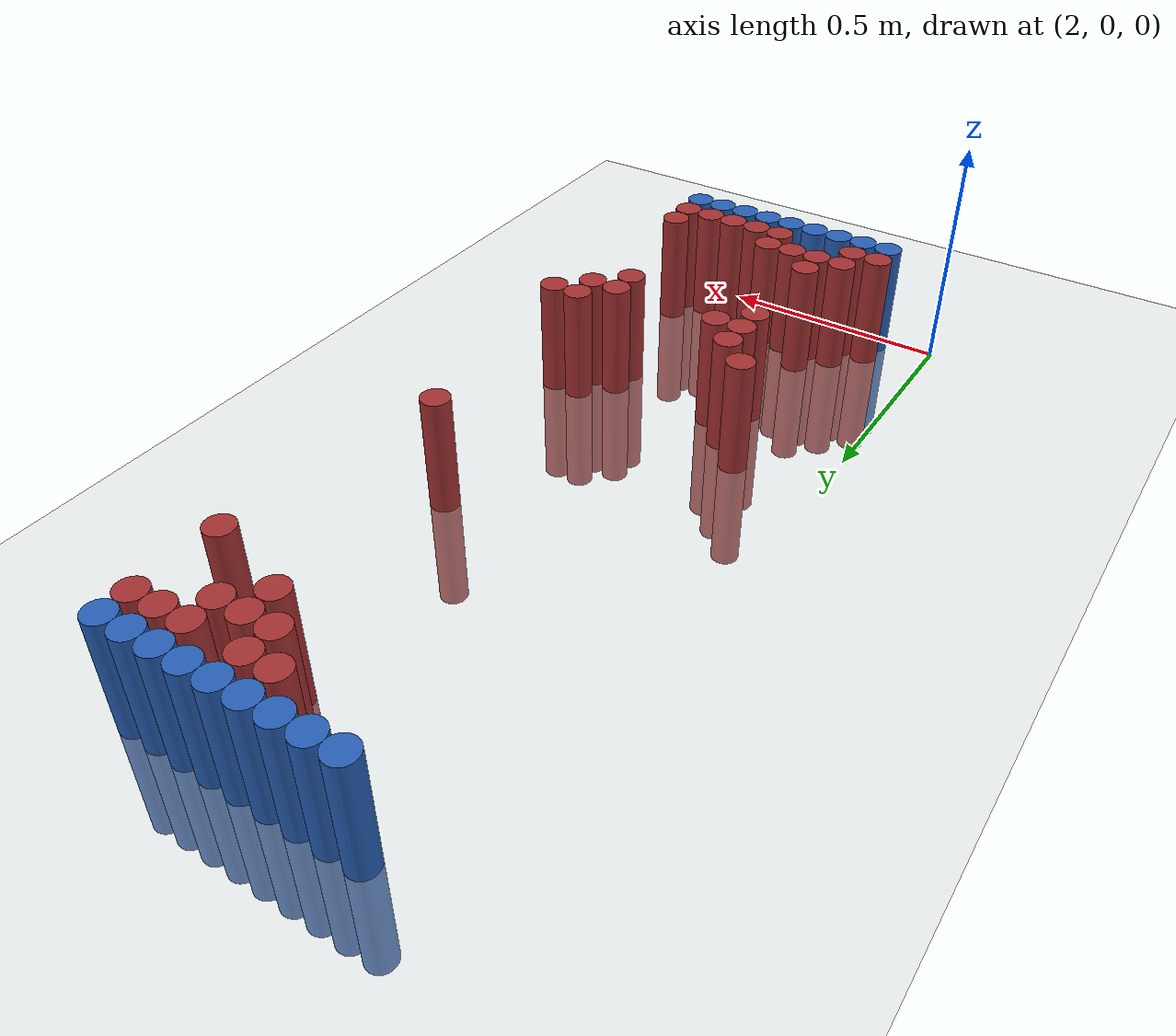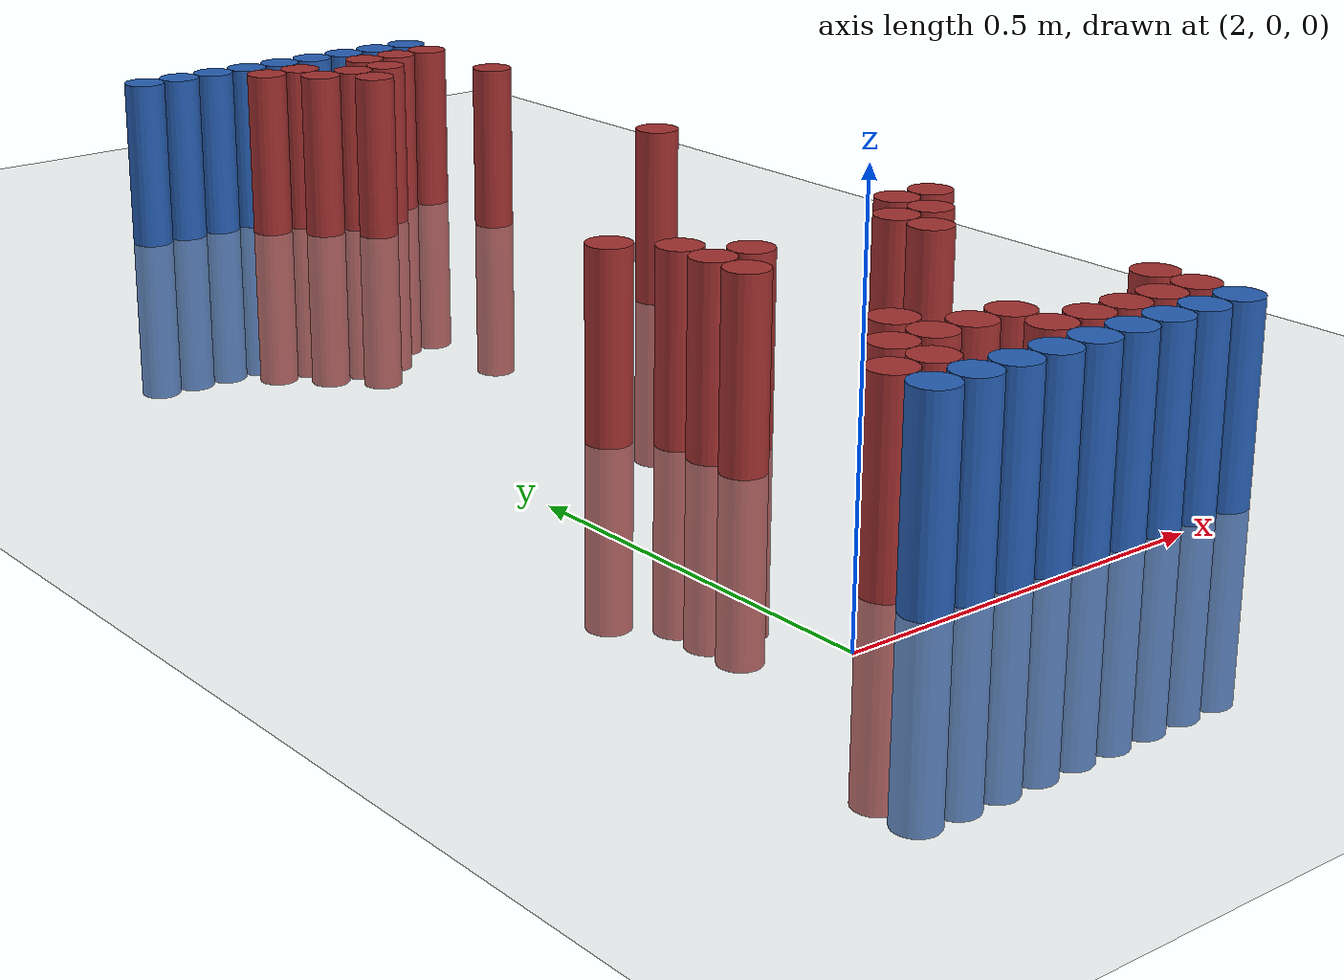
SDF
<sdf version="1.6">
 <world name="default">
  <model name="ground_plane">
   <static>1</static>
   <link name="link">
    <collision name="collision">
     <geometry><plane><normal>0 0 1</normal><size>100 100</size></plane></geometry>
     <surface><friction><ode><mu>100</mu><mu2>50</mu2></ode></friction></surface>
    </collision>
    <visual name="visual">
     <cast_shadows>0</cast_shadows>
     <geometry><plane><normal>0 0 1</normal><size>100 100</size></plane></geometry>
     <material>
      <script><uri>file://media/materials/scripts/gazebo.material</uri><name>Gazebo/Grey</name></script>
     </material>
    </visual>
   </link>
  </model>
  <model name="unit_cylinder_97">
   <static>1</static>
   <pose>2.190000 1.770000 0.000000 0.000000 0.000000 0.000000</pose>
   <link name="link">
    <inertial>
     <mass>1</mass>
     <inertia><ixx>0.145833</ixx><ixy>0</ixy><ixz>0</ixz><iyy>0.145833</iyy><iyz>0</iyz><izz>0.125</izz></inertia>
    </inertial>
    <collision name="collision">
     <geometry><cylinder><radius>0.030000</radius><length>0.5</length></cylinder></geometry>
    </collision>
    <visual name="visual">
     <geometry><cylinder><radius>0.030000</radius><length>0.5</length></cylinder></geometry>
     <material>
      <ambient>0.152000 0.379000 0.720000 1</ambient>
      <diffuse>0.152000 0.379000 0.720000 1</diffuse>
     </material>
     <material>
      <script><name>Gazebo/Grey</name><uri>file://media/materials/scripts/gazebo.material</uri></script>
     </material>
    </visual>
   </link>
  </model>
  <model name="unit_cylinder_98">
   <static>1</static>
   <pose>2.250000 1.770000 0.000000 0.000000 0.000000 0.000000</pose>
   <link name="link">
    <inertial>
     <mass>1</mass>
     <inertia><ixx>0.145833</ixx><ixy>0</ixy><ixz>0</ixz><iyy>0.145833</iyy><iyz>0</iyz><izz>0.125</izz></inertia>
    </inertial>
    <collision name="collision">
     <geometry><cylinder><radius>0.030000</radius><length>0.5</length></cylinder></geometry>
    </collision>
    <visual name="visual">
     <geometry><cylinder><radius>0.030000</radius><length>0.5</length></cylinder></geometry>
     <material>
      <ambient>0.152000 0.379000 0.720000 1</ambient>
      <diffuse>0.152000 0.379000 0.720000 1</diffuse>
     </material>
     <material>
      <script><name>Gazebo/Grey</name><uri>file://media/materials/scripts/gazebo.material</uri></script>
     </material>
    </visual>
   </link>
  </model>
  <model name="unit_cylinder_99">
   <static>1</static>
   <pose>2.310000 1.770000 0.000000 0.000000 0.000000 0.000000</pose>
   <link name="link">
    <inertial>
     <mass>1</mass>
     <inertia><ixx>0.145833</ixx><ixy>0</ixy><ixz>0</ixz><iyy>0.145833</iyy><iyz>0</iyz><izz>0.125</izz></inertia>
    </inertial>
    <collision name="collision">
     <geometry><cylinder><radius>0.030000</radius><length>0.5</length></cylinder></geometry>
    </collision>
    <visual name="visual">
     <geometry><cylinder><radius>0.030000</radius><length>0.5</length></cylinder></geometry>
     <material>
      <ambient>0.152000 0.379000 0.720000 1</ambient>
      <diffuse>0.152000 0.379000 0.720000 1</diffuse>
     </material>
     <material>
      <script><name>Gazebo/Grey</name><uri>file://media/materials/scripts/gazebo.material</uri></script>
     </material>
    </visual>
   </link>
  </model>
  <model name="unit_cylinder_100">
   <static>1</static>
   <pose>2.370000 1.770000 0.000000 0.000000 0.000000 0.000000</pose>
   <link name="link">
    <inertial>
     <mass>1</mass>
     <inertia><ixx>0.145833</ixx><ixy>0</ixy><ixz>0</ixz><iyy>0.145833</iyy><iyz>0</iyz><izz>0.125</izz></inertia>
    </inertial>
    <collision name="collision">
     <geometry><cylinder><radius>0.030000</radius><length>0.5</length></cylinder></geometry>
    </collision>
    <visual name="visual">
     <geometry><cylinder><radius>0.030000</radius><length>0.5</length></cylinder></geometry>
     <material>
      <ambient>0.152000 0.379000 0.720000 1</ambient>
      <diffuse>0.152000 0.379000 0.720000 1</diffuse>
     </material>
     <material>
      <script><name>Gazebo/Grey</name><uri>file://media/materials/scripts/gazebo.material</uri></script>
     </material>
    </visual>
   </link>
  </model>
  <model name="unit_cylinder_101">
   <static>1</static>
   <pose>2.430000 1.770000 0.000000 0.000000 0.000000 0.000000</pose>
   <link name="link">
    <inertial>
     <mass>1</mass>
     <inertia><ixx>0.145833</ixx><ixy>0</ixy><ixz>0</ixz><iyy>0.145833</iyy><iyz>0</iyz><izz>0.125</izz></inertia>
    </inertial>
    <collision name="collision">
     <geometry><cylinder><radius>0.030000</radius><length>0.5</length></cylinder></geometry>
    </collision>
    <visual name="visual">
     <geometry><cylinder><radius>0.030000</radius><length>0.5</length></cylinder></geometry>
     <material>
      <ambient>0.152000 0.379000 0.720000 1</ambient>
      <diffuse>0.152000 0.379000 0.720000 1</diffuse>
     </material>
     <material>
      <script><name>Gazebo/Grey</name><uri>file://media/materials/scripts/gazebo.material</uri></script>
     </material>
    </visual>
   </link>
  </model>
  <model name="unit_cylinder_102">
   <static>1</static>
   <pose>2.490000 1.770000 0.000000 0.000000 0.000000 0.000000</pose>
   <link name="link">
    <inertial>
     <mass>1</mass>
     <inertia><ixx>0.145833</ixx><ixy>0</ixy><ixz>0</ixz><iyy>0.145833</iyy><iyz>0</iyz><izz>0.125</izz></inertia>
    </inertial>
    <collision name="collision">
     <geometry><cylinder><radius>0.030000</radius><length>0.5</length></cylinder></geometry>
    </collision>
    <visual name="visual">
     <geometry><cylinder><radius>0.030000</radius><length>0.5</length></cylinder></geometry>
     <material>
      <ambient>0.152000 0.379000 0.720000 1</ambient>
      <diffuse>0.152000 0.379000 0.720000 1</diffuse>
     </material>
     <material>
      <script><name>Gazebo/Grey</name><uri>file://media/materials/scripts/gazebo.material</uri></script>
     </material>
    </visual>
   </link>
  </model>
  <model name="unit_cylinder_103">
   <static>1</static>
   <pose>2.550000 1.770000 0.000000 0.000000 0.000000 0.000000</pose>
   <link name="link">
    <inertial>
     <mass>1</mass>
     <inertia><ixx>0.145833</ixx><ixy>0</ixy><ixz>0</ixz><iyy>0.145833</iyy><iyz>0</iyz><izz>0.125</izz></inertia>
    </inertial>
    <collision name="collision">
     <geometry><cylinder><radius>0.030000</radius><length>0.5</length></cylinder></geometry>
    </collision>
    <visual name="visual">
     <geometry><cylinder><radius>0.030000</radius><length>0.5</length></cylinder></geometry>
     <material>
      <ambient>0.152000 0.379000 0.720000 1</ambient>
      <diffuse>0.152000 0.379000 0.720000 1</diffuse>
     </material>
     <material>
      <script><name>Gazebo/Grey</name><uri>file://media/materials/scripts/gazebo.material</uri></script>
     </material>
    </visual>
   </link>
  </model>
  <model name="unit_cylinder_104">
   <static>1</static>
   <pose>2.610000 1.770000 0.000000 0.000000 0.000000 0.000000</pose>
   <link name="link">
    <inertial>
     <mass>1</mass>
     <inertia><ixx>0.145833</ixx><ixy>0</ixy><ixz>0</ixz><iyy>0.145833</iyy><iyz>0</iyz><izz>0.125</izz></inertia>
    </inertial>
    <collision name="collision">
     <geometry><cylinder><radius>0.030000</radius><length>0.5</length></cylinder></geometry>
    </collision>
    <visual name="visual">
     <geometry><cylinder><radius>0.030000</radius><length>0.5</length></cylinder></geometry>
     <material>
      <ambient>0.152000 0.379000 0.720000 1</ambient>
      <diffuse>0.152000 0.379000 0.720000 1</diffuse>
     </material>
     <material>
      <script><name>Gazebo/Grey</name><uri>file://media/materials/scripts/gazebo.material</uri></script>
     </material>
    </visual>
   </link>
  </model>
  <model name="unit_cylinder_105">
   <static>1</static>
   <pose>2.670000 1.770000 0.000000 0.000000 0.000000 0.000000</pose>
   <link name="link">
    <inertial>
     <mass>1</mass>
     <inertia><ixx>0.145833</ixx><ixy>0</ixy><ixz>0</ixz><iyy>0.145833</iyy><iyz>0</iyz><izz>0.125</izz></inertia>
    </inertial>
    <collision name="collision">
     <geometry><cylinder><radius>0.030000</radius><length>0.5</length></cylinder></geometry>
    </collision>
    <visual name="visual">
     <geometry><cylinder><radius>0.030000</radius><length>0.5</length></cylinder></geometry>
     <material>
      <ambient>0.152000 0.379000 0.720000 1</ambient>
      <diffuse>0.152000 0.379000 0.720000 1</diffuse>
     </material>
     <material>
      <script><name>Gazebo/Grey</name><uri>file://media/materials/scripts/gazebo.material</uri></script>
     </material>
    </visual>
   </link>
  </model>
  <model name="unit_cylinder_127">
   <static>1</static>
   <pose>2.370000 1.710000 0.000000 0.000000 0.000000 0.000000</pose>
   <link name="link">
    <inertial>
     <mass>1</mass>
     <inertia><ixx>0.145833</ixx><ixy>0</ixy><ixz>0</ixz><iyy>0.145833</iyy><iyz>0</iyz><izz>0.125</izz></inertia>
    </inertial>
    <collision name="collision">
     <geometry><cylinder><radius>0.030000</radius><length>0.5</length></cylinder></geometry>
    </collision>
    <visual name="visual">
     <geometry><cylinder><radius>0.030000</radius><length>0.5</length></cylinder></geometry>
     <material>
      <ambient>0.648000 0.192000 0.192000 1</ambient>
      <diffuse>0.648000 0.192000 0.192000 1</diffuse>
     </material>
     <material>
      <script><name>Gazebo/Grey</name><uri>file://media/materials/scripts/gazebo.material</uri></script>
     </material>
    </visual>
   </link>
  </model>
  <model name="unit_cylinder_128">
   <static>1</static>
   <pose>2.430000 1.710000 0.000000 0.000000 0.000000 0.000000</pose>
   <link name="link">
    <inertial>
     <mass>1</mass>
     <inertia><ixx>0.145833</ixx><ixy>0</ixy><ixz>0</ixz><iyy>0.145833</iyy><iyz>0</iyz><izz>0.125</izz></inertia>
    </inertial>
    <collision name="collision">
     <geometry><cylinder><radius>0.030000</radius><length>0.5</length></cylinder></geometry>
    </collision>
    <visual name="visual">
     <geometry><cylinder><radius>0.030000</radius><length>0.5</length></cylinder></geometry>
     <material>
      <ambient>0.648000 0.192000 0.192000 1</ambient>
      <diffuse>0.648000 0.192000 0.192000 1</diffuse>
     </material>
     <material>
      <script><name>Gazebo/Grey</name><uri>file://media/materials/scripts/gazebo.material</uri></script>
     </material>
    </visual>
   </link>
  </model>
  <model name="unit_cylinder_129">
   <static>1</static>
   <pose>2.550000 1.710000 0.000000 0.000000 0.000000 0.000000</pose>
   <link name="link">
    <inertial>
     <mass>1</mass>
     <inertia><ixx>0.145833</ixx><ixy>0</ixy><ixz>0</ixz><iyy>0.145833</iyy><iyz>0</iyz><izz>0.125</izz></inertia>
    </inertial>
    <collision name="collision">
     <geometry><cylinder><radius>0.030000</radius><length>0.5</length></cylinder></geometry>
    </collision>
    <visual name="visual">
     <geometry><cylinder><radius>0.030000</radius><length>0.5</length></cylinder></geometry>
     <material>
      <ambient>0.648000 0.192000 0.192000 1</ambient>
      <diffuse>0.648000 0.192000 0.192000 1</diffuse>
     </material>
     <material>
      <script><name>Gazebo/Grey</name><uri>file://media/materials/scripts/gazebo.material</uri></script>
     </material>
    </visual>
   </link>
  </model>
  <model name="unit_cylinder_130">
   <static>1</static>
   <pose>2.610000 1.710000 0.000000 0.000000 0.000000 0.000000</pose>
   <link name="link">
    <inertial>
     <mass>1</mass>
     <inertia><ixx>0.145833</ixx><ixy>0</ixy><ixz>0</ixz><iyy>0.145833</iyy><iyz>0</iyz><izz>0.125</izz></inertia>
    </inertial>
    <collision name="collision">
     <geometry><cylinder><radius>0.030000</radius><length>0.5</length></cylinder></geometry>
    </collision>
    <visual name="visual">
     <geometry><cylinder><radius>0.030000</radius><length>0.5</length></cylinder></geometry>
     <material>
      <ambient>0.648000 0.192000 0.192000 1</ambient>
      <diffuse>0.648000 0.192000 0.192000 1</diffuse>
     </material>
     <material>
      <script><name>Gazebo/Grey</name><uri>file://media/materials/scripts/gazebo.material</uri></script>
     </material>
    </visual>
   </link>
  </model>
  <model name="unit_cylinder_131">
   <static>1</static>
   <pose>2.670000 1.710000 0.000000 0.000000 0.000000 0.000000</pose>
   <link name="link">
    <inertial>
     <mass>1</mass>
     <inertia><ixx>0.145833</ixx><ixy>0</ixy><ixz>0</ixz><iyy>0.145833</iyy><iyz>0</iyz><izz>0.125</izz></inertia>
    </inertial>
    <collision name="collision">
     <geometry><cylinder><radius>0.030000</radius><length>0.5</length></cylinder></geometry>
    </collision>
    <visual name="visual">
     <geometry><cylinder><radius>0.030000</radius><length>0.5</length></cylinder></geometry>
     <material>
      <ambient>0.648000 0.192000 0.192000 1</ambient>
      <diffuse>0.648000 0.192000 0.192000 1</diffuse>
     </material>
     <material>
      <script><name>Gazebo/Grey</name><uri>file://media/materials/scripts/gazebo.material</uri></script>
     </material>
    </visual>
   </link>
  </model>
  <model name="unit_cylinder_141">
   <static>1</static>
   <pose>2.430000 1.650000 0.000000 0.000000 0.000000 0.000000</pose>
   <link name="link">
    <inertial>
     <mass>1</mass>
     <inertia><ixx>0.145833</ixx><ixy>0</ixy><ixz>0</ixz><iyy>0.145833</iyy><iyz>0</iyz><izz>0.125</izz></inertia>
    </inertial>
    <collision name="collision">
     <geometry><cylinder><radius>0.030000</radius><length>0.5</length></cylinder></geometry>
    </collision>
    <visual name="visual">
     <geometry><cylinder><radius>0.030000</radius><length>0.5</length></cylinder></geometry>
     <material>
      <ambient>0.648000 0.192000 0.192000 1</ambient>
      <diffuse>0.648000 0.192000 0.192000 1</diffuse>
     </material>
     <material>
      <script><name>Gazebo/Grey</name><uri>file://media/materials/scripts/gazebo.material</uri></script>
     </material>
    </visual>
   </link>
  </model>
  <model name="unit_cylinder_142">
   <static>1</static>
   <pose>2.490000 1.650000 0.000000 0.000000 0.000000 0.000000</pose>
   <link name="link">
    <inertial>
     <mass>1</mass>
     <inertia><ixx>0.145833</ixx><ixy>0</ixy><ixz>0</ixz><iyy>0.145833</iyy><iyz>0</iyz><izz>0.125</izz></inertia>
    </inertial>
    <collision name="collision">
     <geometry><cylinder><radius>0.030000</radius><length>0.5</length></cylinder></geometry>
    </collision>
    <visual name="visual">
     <geometry><cylinder><radius>0.030000</radius><length>0.5</length></cylinder></geometry>
     <material>
      <ambient>0.648000 0.192000 0.192000 1</ambient>
      <diffuse>0.648000 0.192000 0.192000 1</diffuse>
     </material>
     <material>
      <script><name>Gazebo/Grey</name><uri>file://media/materials/scripts/gazebo.material</uri></script>
     </material>
    </visual>
   </link>
  </model>
  <model name="unit_cylinder_143">
   <static>1</static>
   <pose>2.550000 1.650000 0.000000 0.000000 0.000000 0.000000</pose>
   <link name="link">
    <inertial>
     <mass>1</mass>
     <inertia><ixx>0.145833</ixx><ixy>0</ixy><ixz>0</ixz><iyy>0.145833</iyy><iyz>0</iyz><izz>0.125</izz></inertia>
    </inertial>
    <collision name="collision">
     <geometry><cylinder><radius>0.030000</radius><length>0.5</length></cylinder></geometry>
    </collision>
    <visual name="visual">
     <geometry><cylinder><radius>0.030000</radius><length>0.5</length></cylinder></geometry>
     <material>
      <ambient>0.648000 0.192000 0.192000 1</ambient>
      <diffuse>0.648000 0.192000 0.192000 1</diffuse>
     </material>
     <material>
      <script><name>Gazebo/Grey</name><uri>file://media/materials/scripts/gazebo.material</uri></script>
     </material>
    </visual>
   </link>
  </model>
  <model name="unit_cylinder_146">
   <static>1</static>
   <pose>2.490000 1.590000 0.000000 0.000000 0.000000 0.000000</pose>
   <link name="link">
    <inertial>
     <mass>1</mass>
     <inertia><ixx>0.145833</ixx><ixy>0</ixy><ixz>0</ixz><iyy>0.145833</iyy><iyz>0</iyz><izz>0.125</izz></inertia>
    </inertial>
    <collision name="collision">
     <geometry><cylinder><radius>0.030000</radius><length>0.5</length></cylinder></geometry>
    </collision>
    <visual name="visual">
     <geometry><cylinder><radius>0.030000</radius><length>0.5</length></cylinder></geometry>
     <material>
      <ambient>0.648000 0.192000 0.192000 1</ambient>
      <diffuse>0.648000 0.192000 0.192000 1</diffuse>
     </material>
     <material>
      <script><name>Gazebo/Grey</name><uri>file://media/materials/scripts/gazebo.material</uri></script>
     </material>
    </visual>
   </link>
  </model>
  <model name="unit_cylinder_153">
   <static>1</static>
   <pose>2.670000 1.530000 0.000000 0.000000 0.000000 0.000000</pose>
   <link name="link">
    <inertial>
     <mass>1</mass>
     <inertia><ixx>0.145833</ixx><ixy>0</ixy><ixz>0</ixz><iyy>0.145833</iyy><iyz>0</iyz><izz>0.125</izz></inertia>
    </inertial>
    <collision name="collision">
     <geometry><cylinder><radius>0.030000</radius><length>0.5</length></cylinder></geometry>
    </collision>
    <visual name="visual">
     <geometry><cylinder><radius>0.030000</radius><length>0.5</length></cylinder></geometry>
     <material>
      <ambient>0.648000 0.192000 0.192000 1</ambient>
      <diffuse>0.648000 0.192000 0.192000 1</diffuse>
     </material>
     <material>
      <script><name>Gazebo/Grey</name><uri>file://media/materials/scripts/gazebo.material</uri></script>
     </material>
    </visual>
   </link>
  </model>
  <model name="unit_cylinder_179">
   <static>1</static>
   <pose>2.610000 1.050000 0.000000 0.000000 0.000000 0.000000</pose>
   <link name="link">
    <inertial>
     <mass>1</mass>
     <inertia><ixx>0.145833</ixx><ixy>0</ixy><ixz>0</ixz><iyy>0.145833</iyy><iyz>0</iyz><izz>0.125</izz></inertia>
    </inertial>
    <collision name="collision">
     <geometry><cylinder><radius>0.030000</radius><length>0.5</length></cylinder></geometry>
    </collision>
    <visual name="visual">
     <geometry><cylinder><radius>0.030000</radius><length>0.5</length></cylinder></geometry>
     <material>
      <ambient>0.648000 0.192000 0.192000 1</ambient>
      <diffuse>0.648000 0.192000 0.192000 1</diffuse>
     </material>
     <material>
      <script><name>Gazebo/Grey</name><uri>file://media/materials/scripts/gazebo.material</uri></script>
     </material>
    </visual>
   </link>
  </model>
  <model name="unit_cylinder_188">
   <static>1</static>
   <pose>2.190000 0.630000 0.000000 0.000000 0.000000 0.000000</pose>
   <link name="link">
    <inertial>
     <mass>1</mass>
     <inertia><ixx>0.145833</ixx><ixy>0</ixy><ixz>0</ixz><iyy>0.145833</iyy><iyz>0</iyz><izz>0.125</izz></inertia>
    </inertial>
    <collision name="collision">
     <geometry><cylinder><radius>0.030000</radius><length>0.5</length></cylinder></geometry>
    </collision>
    <visual name="visual">
     <geometry><cylinder><radius>0.030000</radius><length>0.5</length></cylinder></geometry>
     <material>
      <ambient>0.648000 0.192000 0.192000 1</ambient>
      <diffuse>0.648000 0.192000 0.192000 1</diffuse>
     </material>
     <material>
      <script><name>Gazebo/Grey</name><uri>file://media/materials/scripts/gazebo.material</uri></script>
     </material>
    </visual>
   </link>
  </model>
  <model name="unit_cylinder_192">
   <static>1</static>
   <pose>2.250000 0.570000 0.000000 0.000000 0.000000 0.000000</pose>
   <link name="link">
    <inertial>
     <mass>1</mass>
     <inertia><ixx>0.145833</ixx><ixy>0</ixy><ixz>0</ixz><iyy>0.145833</iyy><iyz>0</iyz><izz>0.125</izz></inertia>
    </inertial>
    <collision name="collision">
     <geometry><cylinder><radius>0.030000</radius><length>0.5</length></cylinder></geometry>
    </collision>
    <visual name="visual">
     <geometry><cylinder><radius>0.030000</radius><length>0.5</length></cylinder></geometry>
     <material>
      <ambient>0.648000 0.192000 0.192000 1</ambient>
      <diffuse>0.648000 0.192000 0.192000 1</diffuse>
     </material>
     <material>
      <script><name>Gazebo/Grey</name><uri>file://media/materials/scripts/gazebo.material</uri></script>
     </material>
    </visual>
   </link>
  </model>
  <model name="unit_cylinder_193">
   <static>1</static>
   <pose>2.610000 0.570000 0.000000 0.000000 0.000000 0.000000</pose>
   <link name="link">
    <inertial>
     <mass>1</mass>
     <inertia><ixx>0.145833</ixx><ixy>0</ixy><ixz>0</ixz><iyy>0.145833</iyy><iyz>0</iyz><izz>0.125</izz></inertia>
    </inertial>
    <collision name="collision">
     <geometry><cylinder><radius>0.030000</radius><length>0.5</length></cylinder></geometry>
    </collision>
    <visual name="visual">
     <geometry><cylinder><radius>0.030000</radius><length>0.5</length></cylinder></geometry>
     <material>
      <ambient>0.648000 0.192000 0.192000 1</ambient>
      <diffuse>0.648000 0.192000 0.192000 1</diffuse>
     </material>
     <material>
      <script><name>Gazebo/Grey</name><uri>file://media/materials/scripts/gazebo.material</uri></script>
     </material>
    </visual>
   </link>
  </model>
  <model name="unit_cylinder_194">
   <static>1</static>
   <pose>2.670000 0.570000 0.000000 0.000000 0.000000 0.000000</pose>
   <link name="link">
    <inertial>
     <mass>1</mass>
     <inertia><ixx>0.145833</ixx><ixy>0</ixy><ixz>0</ixz><iyy>0.145833</iyy><iyz>0</iyz><izz>0.125</izz></inertia>
    </inertial>
    <collision name="collision">
     <geometry><cylinder><radius>0.030000</radius><length>0.5</length></cylinder></geometry>
    </collision>
    <visual name="visual">
     <geometry><cylinder><radius>0.030000</radius><length>0.5</length></cylinder></geometry>
     <material>
      <ambient>0.648000 0.192000 0.192000 1</ambient>
      <diffuse>0.648000 0.192000 0.192000 1</diffuse>
     </material>
     <material>
      <script><name>Gazebo/Grey</name><uri>file://media/materials/scripts/gazebo.material</uri></script>
     </material>
    </visual>
   </link>
  </model>
  <model name="unit_cylinder_199">
   <static>1</static>
   <pose>2.250000 0.510000 0.000000 0.000000 0.000000 0.000000</pose>
   <link name="link">
    <inertial>
     <mass>1</mass>
     <inertia><ixx>0.145833</ixx><ixy>0</ixy><ixz>0</ixz><iyy>0.145833</iyy><iyz>0</iyz><izz>0.125</izz></inertia>
    </inertial>
    <collision name="collision">
     <geometry><cylinder><radius>0.030000</radius><length>0.5</length></cylinder></geometry>
    </collision>
    <visual name="visual">
     <geometry><cylinder><radius>0.030000</radius><length>0.5</length></cylinder></geometry>
     <material>
      <ambient>0.648000 0.192000 0.192000 1</ambient>
      <diffuse>0.648000 0.192000 0.192000 1</diffuse>
     </material>
     <material>
      <script><name>Gazebo/Grey</name><uri>file://media/materials/scripts/gazebo.material</uri></script>
     </material>
    </visual>
   </link>
  </model>
  <model name="unit_cylinder_200">
   <static>1</static>
   <pose>2.310000 0.510000 0.000000 0.000000 0.000000 0.000000</pose>
   <link name="link">
    <inertial>
     <mass>1</mass>
     <inertia><ixx>0.145833</ixx><ixy>0</ixy><ixz>0</ixz><iyy>0.145833</iyy><iyz>0</iyz><izz>0.125</izz></inertia>
    </inertial>
    <collision name="collision">
     <geometry><cylinder><radius>0.030000</radius><length>0.5</length></cylinder></geometry>
    </collision>
    <visual name="visual">
     <geometry><cylinder><radius>0.030000</radius><length>0.5</length></cylinder></geometry>
     <material>
      <ambient>0.648000 0.192000 0.192000 1</ambient>
      <diffuse>0.648000 0.192000 0.192000 1</diffuse>
     </material>
     <material>
      <script><name>Gazebo/Grey</name><uri>file://media/materials/scripts/gazebo.material</uri></script>
     </material>
    </visual>
   </link>
  </model>
  <model name="unit_cylinder_201">
   <static>1</static>
   <pose>2.550000 0.510000 0.000000 0.000000 0.000000 0.000000</pose>
   <link name="link">
    <inertial>
     <mass>1</mass>
     <inertia><ixx>0.145833</ixx><ixy>0</ixy><ixz>0</ixz><iyy>0.145833</iyy><iyz>0</iyz><izz>0.125</izz></inertia>
    </inertial>
    <collision name="collision">
     <geometry><cylinder><radius>0.030000</radius><length>0.5</length></cylinder></geometry>
    </collision>
    <visual name="visual">
     <geometry><cylinder><radius>0.030000</radius><length>0.5</length></cylinder></geometry>
     <material>
      <ambient>0.648000 0.192000 0.192000 1</ambient>
      <diffuse>0.648000 0.192000 0.192000 1</diffuse>
     </material>
     <material>
      <script><name>Gazebo/Grey</name><uri>file://media/materials/scripts/gazebo.material</uri></script>
     </material>
    </visual>
   </link>
  </model>
  <model name="unit_cylinder_202">
   <static>1</static>
   <pose>2.610000 0.510000 0.000000 0.000000 0.000000 0.000000</pose>
   <link name="link">
    <inertial>
     <mass>1</mass>
     <inertia><ixx>0.145833</ixx><ixy>0</ixy><ixz>0</ixz><iyy>0.145833</iyy><iyz>0</iyz><izz>0.125</izz></inertia>
    </inertial>
    <collision name="collision">
     <geometry><cylinder><radius>0.030000</radius><length>0.5</length></cylinder></geometry>
    </collision>
    <visual name="visual">
     <geometry><cylinder><radius>0.030000</radius><length>0.5</length></cylinder></geometry>
     <material>
      <ambient>0.648000 0.192000 0.192000 1</ambient>
      <diffuse>0.648000 0.192000 0.192000 1</diffuse>
     </material>
     <material>
      <script><name>Gazebo/Grey</name><uri>file://media/materials/scripts/gazebo.material</uri></script>
     </material>
    </visual>
   </link>
  </model>
  <model name="unit_cylinder_211">
   <static>1</static>
   <pose>2.250000 0.450000 0.000000 0.000000 0.000000 0.000000</pose>
   <link name="link">
    <inertial>
     <mass>1</mass>
     <inertia><ixx>0.145833</ixx><ixy>0</ixy><ixz>0</ixz><iyy>0.145833</iyy><iyz>0</iyz><izz>0.125</izz></inertia>
    </inertial>
    <collision name="collision">
     <geometry><cylinder><radius>0.030000</radius><length>0.5</length></cylinder></geometry>
    </collision>
    <visual name="visual">
     <geometry><cylinder><radius>0.030000</radius><length>0.5</length></cylinder></geometry>
     <material>
      <ambient>0.648000 0.192000 0.192000 1</ambient>
      <diffuse>0.648000 0.192000 0.192000 1</diffuse>
     </material>
     <material>
      <script><name>Gazebo/Grey</name><uri>file://media/materials/scripts/gazebo.material</uri></script>
     </material>
    </visual>
   </link>
  </model>
  <model name="unit_cylinder_212">
   <static>1</static>
   <pose>2.550000 0.450000 0.000000 0.000000 0.000000 0.000000</pose>
   <link name="link">
    <inertial>
     <mass>1</mass>
     <inertia><ixx>0.145833</ixx><ixy>0</ixy><ixz>0</ixz><iyy>0.145833</iyy><iyz>0</iyz><izz>0.125</izz></inertia>
    </inertial>
    <collision name="collision">
     <geometry><cylinder><radius>0.030000</radius><length>0.5</length></cylinder></geometry>
    </collision>
    <visual name="visual">
     <geometry><cylinder><radius>0.030000</radius><length>0.5</length></cylinder></geometry>
     <material>
      <ambient>0.648000 0.192000 0.192000 1</ambient>
      <diffuse>0.648000 0.192000 0.192000 1</diffuse>
     </material>
     <material>
      <script><name>Gazebo/Grey</name><uri>file://media/materials/scripts/gazebo.material</uri></script>
     </material>
    </visual>
   </link>
  </model>
  <model name="unit_cylinder_239">
   <static>1</static>
   <pose>2.250000 0.210000 0.000000 0.000000 0.000000 0.000000</pose>
   <link name="link">
    <inertial>
     <mass>1</mass>
     <inertia><ixx>0.145833</ixx><ixy>0</ixy><ixz>0</ixz><iyy>0.145833</iyy><iyz>0</iyz><izz>0.125</izz></inertia>
    </inertial>
    <collision name="collision">
     <geometry><cylinder><radius>0.030000</radius><length>0.5</length></cylinder></geometry>
    </collision>
    <visual name="visual">
     <geometry><cylinder><radius>0.030000</radius><length>0.5</length></cylinder></geometry>
     <material>
      <ambient>0.648000 0.192000 0.192000 1</ambient>
      <diffuse>0.648000 0.192000 0.192000 1</diffuse>
     </material>
     <material>
      <script><name>Gazebo/Grey</name><uri>file://media/materials/scripts/gazebo.material</uri></script>
     </material>
    </visual>
   </link>
  </model>
  <model name="unit_cylinder_246">
   <static>1</static>
   <pose>2.190000 0.150000 0.000000 0.000000 0.000000 0.000000</pose>
   <link name="link">
    <inertial>
     <mass>1</mass>
     <inertia><ixx>0.145833</ixx><ixy>0</ixy><ixz>0</ixz><iyy>0.145833</iyy><iyz>0</iyz><izz>0.125</izz></inertia>
    </inertial>
    <collision name="collision">
     <geometry><cylinder><radius>0.030000</radius><length>0.5</length></cylinder></geometry>
    </collision>
    <visual name="visual">
     <geometry><cylinder><radius>0.030000</radius><length>0.5</length></cylinder></geometry>
     <material>
      <ambient>0.648000 0.192000 0.192000 1</ambient>
      <diffuse>0.648000 0.192000 0.192000 1</diffuse>
     </material>
     <material>
      <script><name>Gazebo/Grey</name><uri>file://media/materials/scripts/gazebo.material</uri></script>
     </material>
    </visual>
   </link>
  </model>
  <model name="unit_cylinder_247">
   <static>1</static>
   <pose>2.250000 0.150000 0.000000 0.000000 0.000000 0.000000</pose>
   <link name="link">
    <inertial>
     <mass>1</mass>
     <inertia><ixx>0.145833</ixx><ixy>0</ixy><ixz>0</ixz><iyy>0.145833</iyy><iyz>0</iyz><izz>0.125</izz></inertia>
    </inertial>
    <collision name="collision">
     <geometry><cylinder><radius>0.030000</radius><length>0.5</length></cylinder></geometry>
    </collision>
    <visual name="visual">
     <geometry><cylinder><radius>0.030000</radius><length>0.5</length></cylinder></geometry>
     <material>
      <ambient>0.648000 0.192000 0.192000 1</ambient>
      <diffuse>0.648000 0.192000 0.192000 1</diffuse>
     </material>
     <material>
      <script><name>Gazebo/Grey</name><uri>file://media/materials/scripts/gazebo.material</uri></script>
     </material>
    </visual>
   </link>
  </model>
  <model name="unit_cylinder_248">
   <static>1</static>
   <pose>2.310000 0.150000 0.000000 0.000000 0.000000 0.000000</pose>
   <link name="link">
    <inertial>
     <mass>1</mass>
     <inertia><ixx>0.145833</ixx><ixy>0</ixy><ixz>0</ixz><iyy>0.145833</iyy><iyz>0</iyz><izz>0.125</izz></inertia>
    </inertial>
    <collision name="collision">
     <geometry><cylinder><radius>0.030000</radius><length>0.5</length></cylinder></geometry>
    </collision>
    <visual name="visual">
     <geometry><cylinder><radius>0.030000</radius><length>0.5</length></cylinder></geometry>
     <material>
      <ambient>0.648000 0.192000 0.192000 1</ambient>
      <diffuse>0.648000 0.192000 0.192000 1</diffuse>
     </material>
     <material>
      <script><name>Gazebo/Grey</name><uri>file://media/materials/scripts/gazebo.material</uri></script>
     </material>
    </visual>
   </link>
  </model>
  <model name="unit_cylinder_249">
   <static>1</static>
   <pose>2.370000 0.150000 0.000000 0.000000 0.000000 0.000000</pose>
   <link name="link">
    <inertial>
     <mass>1</mass>
     <inertia><ixx>0.145833</ixx><ixy>0</ixy><ixz>0</ixz><iyy>0.145833</iyy><iyz>0</iyz><izz>0.125</izz></inertia>
    </inertial>
    <collision name="collision">
     <geometry><cylinder><radius>0.030000</radius><length>0.5</length></cylinder></geometry>
    </collision>
    <visual name="visual">
     <geometry><cylinder><radius>0.030000</radius><length>0.5</length></cylinder></geometry>
     <material>
      <ambient>0.648000 0.192000 0.192000 1</ambient>
      <diffuse>0.648000 0.192000 0.192000 1</diffuse>
     </material>
     <material>
      <script><name>Gazebo/Grey</name><uri>file://media/materials/scripts/gazebo.material</uri></script>
     </material>
    </visual>
   </link>
  </model>
  <model name="unit_cylinder_250">
   <static>1</static>
   <pose>2.610000 0.150000 0.000000 0.000000 0.000000 0.000000</pose>
   <link name="link">
    <inertial>
     <mass>1</mass>
     <inertia><ixx>0.145833</ixx><ixy>0</ixy><ixz>0</ixz><iyy>0.145833</iyy><iyz>0</iyz><izz>0.125</izz></inertia>
    </inertial>
    <collision name="collision">
     <geometry><cylinder><radius>0.030000</radius><length>0.5</length></cylinder></geometry>
    </collision>
    <visual name="visual">
     <geometry><cylinder><radius>0.030000</radius><length>0.5</length></cylinder></geometry>
     <material>
      <ambient>0.648000 0.192000 0.192000 1</ambient>
      <diffuse>0.648000 0.192000 0.192000 1</diffuse>
     </material>
     <material>
      <script><name>Gazebo/Grey</name><uri>file://media/materials/scripts/gazebo.material</uri></script>
     </material>
    </visual>
   </link>
  </model>
  <model name="unit_cylinder_260">
   <static>1</static>
   <pose>2.130000 0.090000 0.000000 0.000000 0.000000 0.000000</pose>
   <link name="link">
    <inertial>
     <mass>1</mass>
     <inertia><ixx>0.145833</ixx><ixy>0</ixy><ixz>0</ixz><iyy>0.145833</iyy><iyz>0</iyz><izz>0.125</izz></inertia>
    </inertial>
    <collision name="collision">
     <geometry><cylinder><radius>0.030000</radius><length>0.5</length></cylinder></geometry>
    </collision>
    <visual name="visual">
     <geometry><cylinder><radius>0.030000</radius><length>0.5</length></cylinder></geometry>
     <material>
      <ambient>0.648000 0.192000 0.192000 1</ambient>
      <diffuse>0.648000 0.192000 0.192000 1</diffuse>
     </material>
     <material>
      <script><name>Gazebo/Grey</name><uri>file://media/materials/scripts/gazebo.material</uri></script>
     </material>
    </visual>
   </link>
  </model>
  <model name="unit_cylinder_261">
   <static>1</static>
   <pose>2.190000 0.090000 0.000000 0.000000 0.000000 0.000000</pose>
   <link name="link">
    <inertial>
     <mass>1</mass>
     <inertia><ixx>0.145833</ixx><ixy>0</ixy><ixz>0</ixz><iyy>0.145833</iyy><iyz>0</iyz><izz>0.125</izz></inertia>
    </inertial>
    <collision name="collision">
     <geometry><cylinder><radius>0.030000</radius><length>0.5</length></cylinder></geometry>
    </collision>
    <visual name="visual">
     <geometry><cylinder><radius>0.030000</radius><length>0.5</length></cylinder></geometry>
     <material>
      <ambient>0.648000 0.192000 0.192000 1</ambient>
      <diffuse>0.648000 0.192000 0.192000 1</diffuse>
     </material>
     <material>
      <script><name>Gazebo/Grey</name><uri>file://media/materials/scripts/gazebo.material</uri></script>
     </material>
    </visual>
   </link>
  </model>
  <model name="unit_cylinder_262">
   <static>1</static>
   <pose>2.370000 0.090000 0.000000 0.000000 0.000000 0.000000</pose>
   <link name="link">
    <inertial>
     <mass>1</mass>
     <inertia><ixx>0.145833</ixx><ixy>0</ixy><ixz>0</ixz><iyy>0.145833</iyy><iyz>0</iyz><izz>0.125</izz></inertia>
    </inertial>
    <collision name="collision">
     <geometry><cylinder><radius>0.030000</radius><length>0.5</length></cylinder></geometry>
    </collision>
    <visual name="visual">
     <geometry><cylinder><radius>0.030000</radius><length>0.5</length></cylinder></geometry>
     <material>
      <ambient>0.648000 0.192000 0.192000 1</ambient>
      <diffuse>0.648000 0.192000 0.192000 1</diffuse>
     </material>
     <material>
      <script><name>Gazebo/Grey</name><uri>file://media/materials/scripts/gazebo.material</uri></script>
     </material>
    </visual>
   </link>
  </model>
  <model name="unit_cylinder_263">
   <static>1</static>
   <pose>2.430000 0.090000 0.000000 0.000000 0.000000 0.000000</pose>
   <link name="link">
    <inertial>
     <mass>1</mass>
     <inertia><ixx>0.145833</ixx><ixy>0</ixy><ixz>0</ixz><iyy>0.145833</iyy><iyz>0</iyz><izz>0.125</izz></inertia>
    </inertial>
    <collision name="collision">
     <geometry><cylinder><radius>0.030000</radius><length>0.5</length></cylinder></geometry>
    </collision>
    <visual name="visual">
     <geometry><cylinder><radius>0.030000</radius><length>0.5</length></cylinder></geometry>
     <material>
      <ambient>0.648000 0.192000 0.192000 1</ambient>
      <diffuse>0.648000 0.192000 0.192000 1</diffuse>
     </material>
     <material>
      <script><name>Gazebo/Grey</name><uri>file://media/materials/scripts/gazebo.material</uri></script>
     </material>
    </visual>
   </link>
  </model>
  <model name="unit_cylinder_264">
   <static>1</static>
   <pose>2.490000 0.090000 0.000000 0.000000 0.000000 0.000000</pose>
   <link name="link">
    <inertial>
     <mass>1</mass>
     <inertia><ixx>0.145833</ixx><ixy>0</ixy><ixz>0</ixz><iyy>0.145833</iyy><iyz>0</iyz><izz>0.125</izz></inertia>
    </inertial>
    <collision name="collision">
     <geometry><cylinder><radius>0.030000</radius><length>0.5</length></cylinder></geometry>
    </collision>
    <visual name="visual">
     <geometry><cylinder><radius>0.030000</radius><length>0.5</length></cylinder></geometry>
     <material>
      <ambient>0.648000 0.192000 0.192000 1</ambient>
      <diffuse>0.648000 0.192000 0.192000 1</diffuse>
     </material>
     <material>
      <script><name>Gazebo/Grey</name><uri>file://media/materials/scripts/gazebo.material</uri></script>
     </material>
    </visual>
   </link>
  </model>
  <model name="unit_cylinder_265">
   <static>1</static>
   <pose>2.550000 0.090000 0.000000 0.000000 0.000000 0.000000</pose>
   <link name="link">
    <inertial>
     <mass>1</mass>
     <inertia><ixx>0.145833</ixx><ixy>0</ixy><ixz>0</ixz><iyy>0.145833</iyy><iyz>0</iyz><izz>0.125</izz></inertia>
    </inertial>
    <collision name="collision">
     <geometry><cylinder><radius>0.030000</radius><length>0.5</length></cylinder></geometry>
    </collision>
    <visual name="visual">
     <geometry><cylinder><radius>0.030000</radius><length>0.5</length></cylinder></geometry>
     <material>
      <ambient>0.648000 0.192000 0.192000 1</ambient>
      <diffuse>0.648000 0.192000 0.192000 1</diffuse>
     </material>
     <material>
      <script><name>Gazebo/Grey</name><uri>file://media/materials/scripts/gazebo.material</uri></script>
     </material>
    </visual>
   </link>
  </model>
  <model name="unit_cylinder_266">
   <static>1</static>
   <pose>2.610000 0.090000 0.000000 0.000000 0.000000 0.000000</pose>
   <link name="link">
    <inertial>
     <mass>1</mass>
     <inertia><ixx>0.145833</ixx><ixy>0</ixy><ixz>0</ixz><iyy>0.145833</iyy><iyz>0</iyz><izz>0.125</izz></inertia>
    </inertial>
    <collision name="collision">
     <geometry><cylinder><radius>0.030000</radius><length>0.5</length></cylinder></geometry>
    </collision>
    <visual name="visual">
     <geometry><cylinder><radius>0.030000</radius><length>0.5</length></cylinder></geometry>
     <material>
      <ambient>0.648000 0.192000 0.192000 1</ambient>
      <diffuse>0.648000 0.192000 0.192000 1</diffuse>
     </material>
     <material>
      <script><name>Gazebo/Grey</name><uri>file://media/materials/scripts/gazebo.material</uri></script>
     </material>
    </visual>
   </link>
  </model>
  <model name="unit_cylinder_280">
   <static>1</static>
   <pose>2.130000 0.030000 0.000000 0.000000 0.000000 0.000000</pose>
   <link name="link">
    <inertial>
     <mass>1</mass>
     <inertia><ixx>0.145833</ixx><ixy>0</ixy><ixz>0</ixz><iyy>0.145833</iyy><iyz>0</iyz><izz>0.125</izz></inertia>
    </inertial>
    <collision name="collision">
     <geometry><cylinder><radius>0.030000</radius><length>0.5</length></cylinder></geometry>
    </collision>
    <visual name="visual">
     <geometry><cylinder><radius>0.030000</radius><length>0.5</length></cylinder></geometry>
     <material>
      <ambient>0.152000 0.379000 0.720000 1</ambient>
      <diffuse>0.152000 0.379000 0.720000 1</diffuse>
     </material>
     <material>
      <script><name>Gazebo/Grey</name><uri>file://media/materials/scripts/gazebo.material</uri></script>
     </material>
    </visual>
   </link>
  </model>
  <model name="unit_cylinder_281">
   <static>1</static>
   <pose>2.190000 0.030000 0.000000 0.000000 0.000000 0.000000</pose>
   <link name="link">
    <inertial>
     <mass>1</mass>
     <inertia><ixx>0.145833</ixx><ixy>0</ixy><ixz>0</ixz><iyy>0.145833</iyy><iyz>0</iyz><izz>0.125</izz></inertia>
    </inertial>
    <collision name="collision">
     <geometry><cylinder><radius>0.030000</radius><length>0.5</length></cylinder></geometry>
    </collision>
    <visual name="visual">
     <geometry><cylinder><radius>0.030000</radius><length>0.5</length></cylinder></geometry>
     <material>
      <ambient>0.152000 0.379000 0.720000 1</ambient>
      <diffuse>0.152000 0.379000 0.720000 1</diffuse>
     </material>
     <material>
      <script><name>Gazebo/Grey</name><uri>file://media/materials/scripts/gazebo.material</uri></script>
     </material>
    </visual>
   </link>
  </model>
  <model name="unit_cylinder_282">
   <static>1</static>
   <pose>2.250000 0.030000 0.000000 0.000000 0.000000 0.000000</pose>
   <link name="link">
    <inertial>
     <mass>1</mass>
     <inertia><ixx>0.145833</ixx><ixy>0</ixy><ixz>0</ixz><iyy>0.145833</iyy><iyz>0</iyz><izz>0.125</izz></inertia>
    </inertial>
    <collision name="collision">
     <geometry><cylinder><radius>0.030000</radius><length>0.5</length></cylinder></geometry>
    </collision>
    <visual name="visual">
     <geometry><cylinder><radius>0.030000</radius><length>0.5</length></cylinder></geometry>
     <material>
      <ambient>0.152000 0.379000 0.720000 1</ambient>
      <diffuse>0.152000 0.379000 0.720000 1</diffuse>
     </material>
     <material>
      <script><name>Gazebo/Grey</name><uri>file://media/materials/scripts/gazebo.material</uri></script>
     </material>
    </visual>
   </link>
  </model>
  <model name="unit_cylinder_283">
   <static>1</static>
   <pose>2.310000 0.030000 0.000000 0.000000 0.000000 0.000000</pose>
   <link name="link">
    <inertial>
     <mass>1</mass>
     <inertia><ixx>0.145833</ixx><ixy>0</ixy><ixz>0</ixz><iyy>0.145833</iyy><iyz>0</iyz><izz>0.125</izz></inertia>
    </inertial>
    <collision name="collision">
     <geometry><cylinder><radius>0.030000</radius><length>0.5</length></cylinder></geometry>
    </collision>
    <visual name="visual">
     <geometry><cylinder><radius>0.030000</radius><length>0.5</length></cylinder></geometry>
     <material>
      <ambient>0.152000 0.379000 0.720000 1</ambient>
      <diffuse>0.152000 0.379000 0.720000 1</diffuse>
     </material>
     <material>
      <script><name>Gazebo/Grey</name><uri>file://media/materials/scripts/gazebo.material</uri></script>
     </material>
    </visual>
   </link>
  </model>
  <model name="unit_cylinder_284">
   <static>1</static>
   <pose>2.370000 0.030000 0.000000 0.000000 0.000000 0.000000</pose>
   <link name="link">
    <inertial>
     <mass>1</mass>
     <inertia><ixx>0.145833</ixx><ixy>0</ixy><ixz>0</ixz><iyy>0.145833</iyy><iyz>0</iyz><izz>0.125</izz></inertia>
    </inertial>
    <collision name="collision">
     <geometry><cylinder><radius>0.030000</radius><length>0.5</length></cylinder></geometry>
    </collision>
    <visual name="visual">
     <geometry><cylinder><radius>0.030000</radius><length>0.5</length></cylinder></geometry>
     <material>
      <ambient>0.152000 0.379000 0.720000 1</ambient>
      <diffuse>0.152000 0.379000 0.720000 1</diffuse>
     </material>
     <material>
      <script><name>Gazebo/Grey</name><uri>file://media/materials/scripts/gazebo.material</uri></script>
     </material>
    </visual>
   </link>
  </model>
  <model name="unit_cylinder_285">
   <static>1</static>
   <pose>2.430000 0.030000 0.000000 0.000000 0.000000 0.000000</pose>
   <link name="link">
    <inertial>
     <mass>1</mass>
     <inertia><ixx>0.145833</ixx><ixy>0</ixy><ixz>0</ixz><iyy>0.145833</iyy><iyz>0</iyz><izz>0.125</izz></inertia>
    </inertial>
    <collision name="collision">
     <geometry><cylinder><radius>0.030000</radius><length>0.5</length></cylinder></geometry>
    </collision>
    <visual name="visual">
     <geometry><cylinder><radius>0.030000</radius><length>0.5</length></cylinder></geometry>
     <material>
      <ambient>0.152000 0.379000 0.720000 1</ambient>
      <diffuse>0.152000 0.379000 0.720000 1</diffuse>
     </material>
     <material>
      <script><name>Gazebo/Grey</name><uri>file://media/materials/scripts/gazebo.material</uri></script>
     </material>
    </visual>
   </link>
  </model>
  <model name="unit_cylinder_286">
   <static>1</static>
   <pose>2.490000 0.030000 0.000000 0.000000 0.000000 0.000000</pose>
   <link name="link">
    <inertial>
     <mass>1</mass>
     <inertia><ixx>0.145833</ixx><ixy>0</ixy><ixz>0</ixz><iyy>0.145833</iyy><iyz>0</iyz><izz>0.125</izz></inertia>
    </inertial>
    <collision name="collision">
     <geometry><cylinder><radius>0.030000</radius><length>0.5</length></cylinder></geometry>
    </collision>
    <visual name="visual">
     <geometry><cylinder><radius>0.030000</radius><length>0.5</length></cylinder></geometry>
     <material>
      <ambient>0.152000 0.379000 0.720000 1</ambient>
      <diffuse>0.152000 0.379000 0.720000 1</diffuse>
     </material>
     <material>
      <script><name>Gazebo/Grey</name><uri>file://media/materials/scripts/gazebo.material</uri></script>
     </material>
    </visual>
   </link>
  </model>
  <model name="unit_cylinder_287">
   <static>1</static>
   <pose>2.550000 0.030000 0.000000 0.000000 0.000000 0.000000</pose>
   <link name="link">
    <inertial>
     <mass>1</mass>
     <inertia><ixx>0.145833</ixx><ixy>0</ixy><ixz>0</ixz><iyy>0.145833</iyy><iyz>0</iyz><izz>0.125</izz></inertia>
    </inertial>
    <collision name="collision">
     <geometry><cylinder><radius>0.030000</radius><length>0.5</length></cylinder></geometry>
    </collision>
    <visual name="visual">
     <geometry><cylinder><radius>0.030000</radius><length>0.5</length></cylinder></geometry>
     <material>
      <ambient>0.152000 0.379000 0.720000 1</ambient>
      <diffuse>0.152000 0.379000 0.720000 1</diffuse>
     </material>
     <material>
      <script><name>Gazebo/Grey</name><uri>file://media/materials/scripts/gazebo.material</uri></script>
     </material>
    </visual>
   </link>
  </model>
  <model name="unit_cylinder_288">
   <static>1</static>
   <pose>2.610000 0.030000 0.000000 0.000000 0.000000 0.000000</pose>
   <link name="link">
    <inertial>
     <mass>1</mass>
     <inertia><ixx>0.145833</ixx><ixy>0</ixy><ixz>0</ixz><iyy>0.145833</iyy><iyz>0</iyz><izz>0.125</izz></inertia>
    </inertial>
    <collision name="collision">
     <geometry><cylinder><radius>0.030000</radius><length>0.5</length></cylinder></geometry>
    </collision>
    <visual name="visual">
     <geometry><cylinder><radius>0.030000</radius><length>0.5</length></cylinder></geometry>
     <material>
      <ambient>0.152000 0.379000 0.720000 1</ambient>
      <diffuse>0.152000 0.379000 0.720000 1</diffuse>
     </material>
     <material>
      <script><name>Gazebo/Grey</name><uri>file://media/materials/scripts/gazebo.material</uri></script>
     </material>
    </visual>
   </link>
  </model>
 </world>
</sdf>
